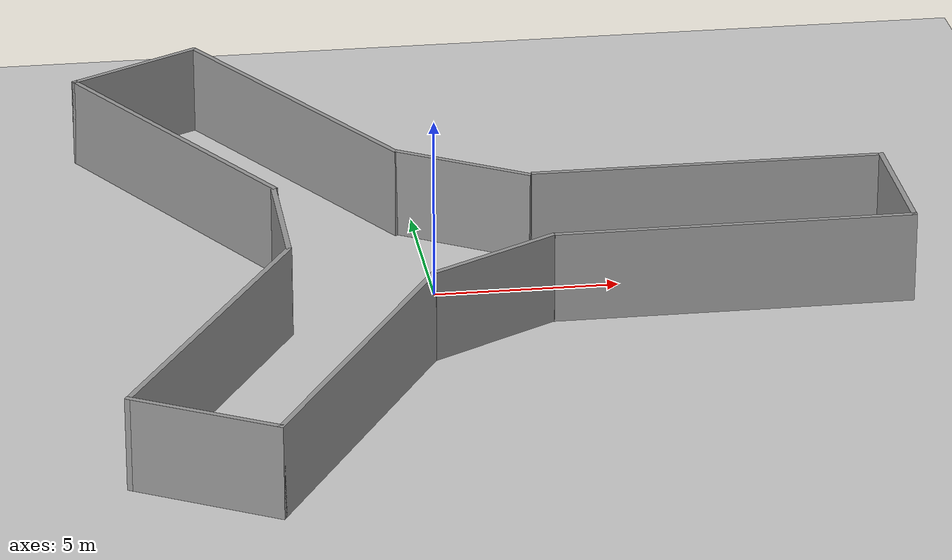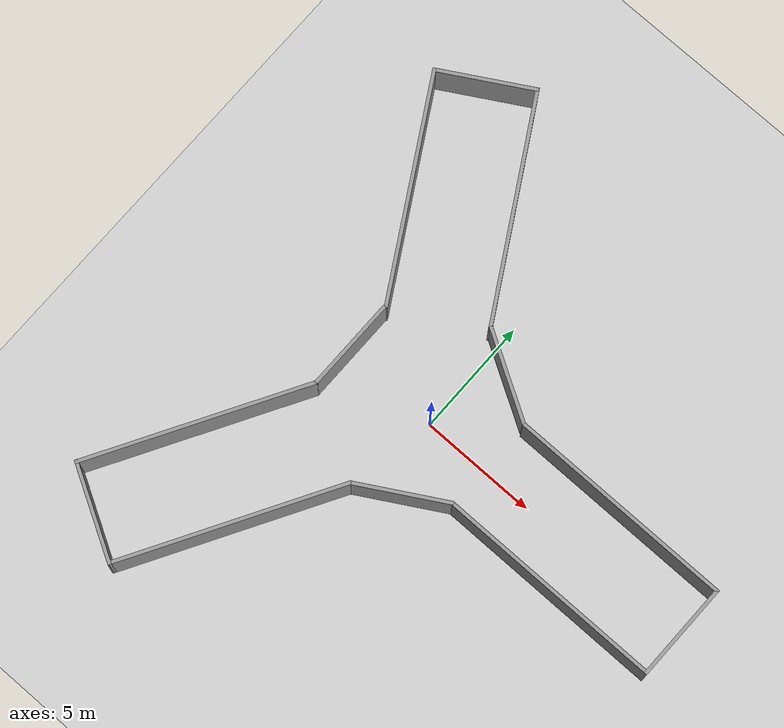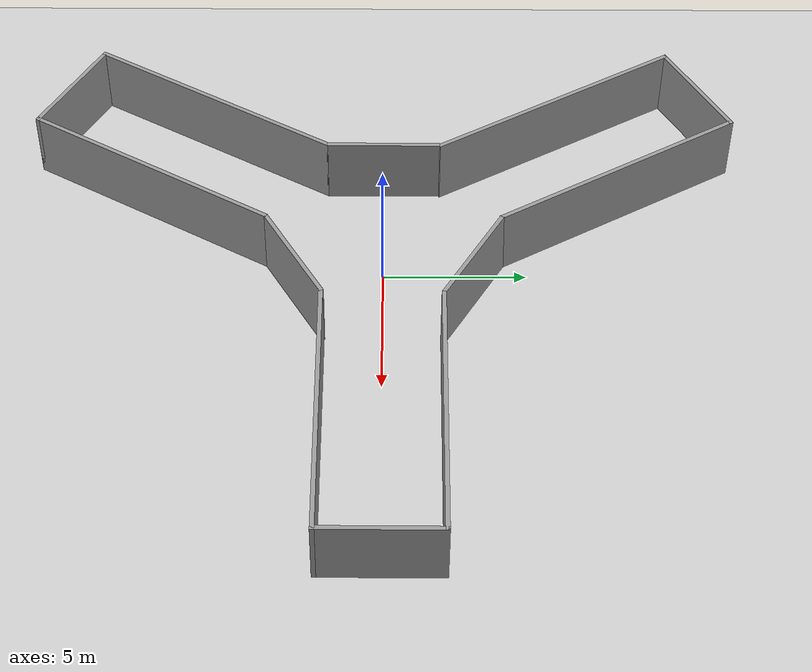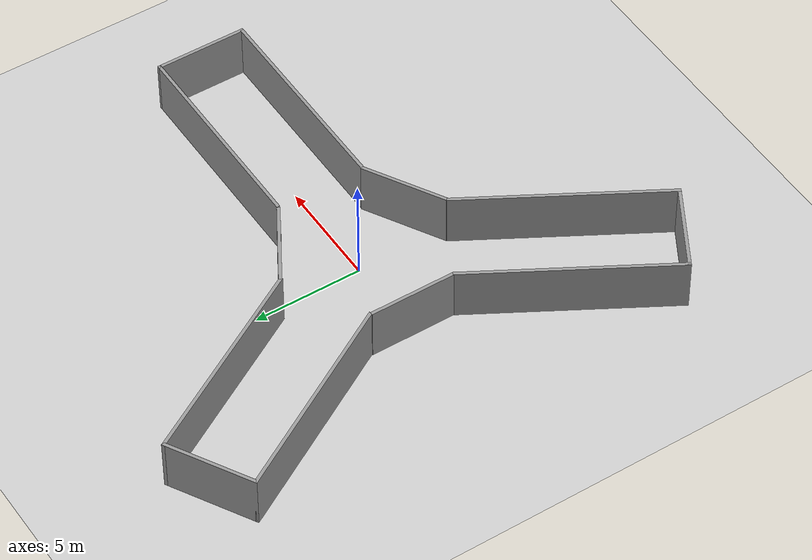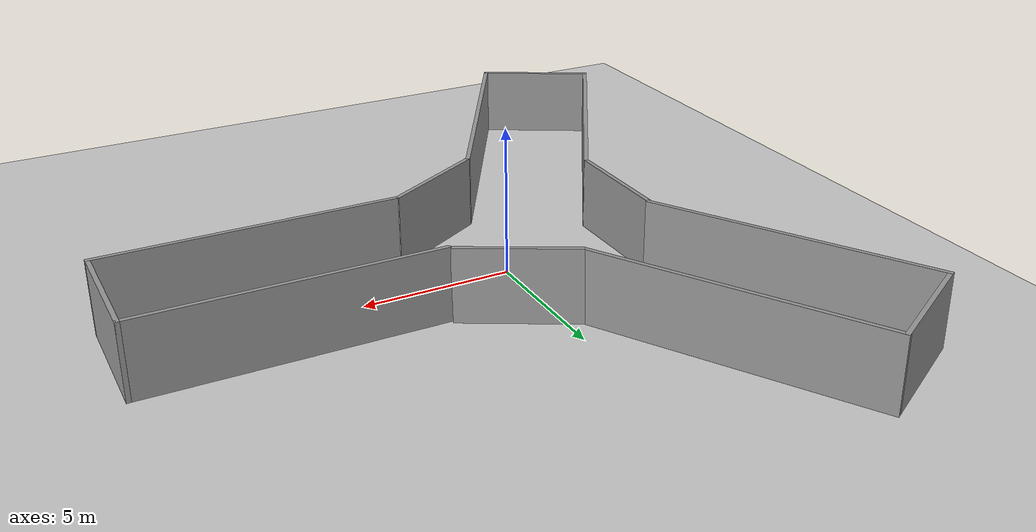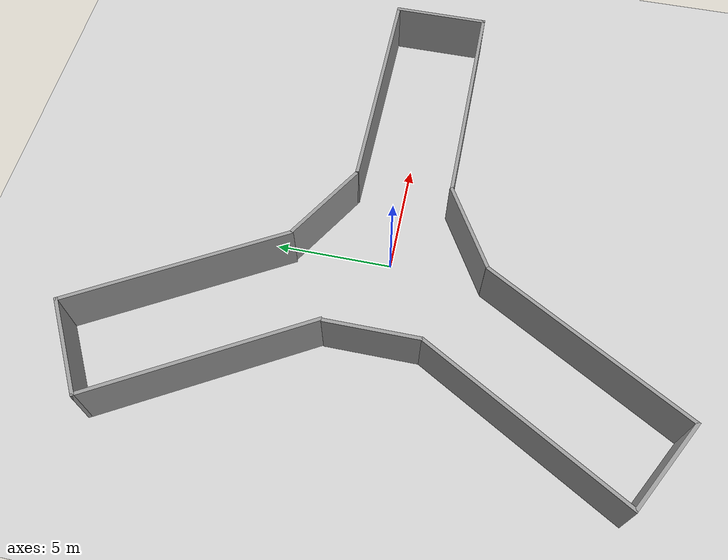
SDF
<sdf version="1.6">
 <world name="default">
  <light name="sun" type="directional">
   <pose>0 0 10 0 -0 0</pose>
   <diffuse>0.8 0.8 0.8 1</diffuse>
   <specular>0.2 0.2 0.2 1</specular>
   <attenuation>
    <range>1000</range>
    <constant>0.9</constant>
    <linear>0.01</linear>
    <quadratic>0.001</quadratic>
   </attenuation>
   <direction>-0.5 0.1 -0.9</direction>
  </light>
  <model name="ground_plane">
   <static>1</static>
   <link name="link">
    <collision name="collision">
     <geometry><plane><normal>0 0 1</normal><size>100 100</size></plane></geometry>
     <surface>
      <contact><collide_bitmask>65535</collide_bitmask></contact>
      <friction><ode><mu>100</mu><mu2>50</mu2></ode></friction>
     </surface>
    </collision>
    <visual name="visual">
     <cast_shadows>0</cast_shadows>
     <geometry><plane><normal>0 0 1</normal><size>100 100</size></plane></geometry>
     <material>
      <script><uri>file://media/materials/scripts/gazebo.material</uri><name>Gazebo/Grey</name></script>
     </material>
    </visual>
   </link>
  </model>
  <gravity>0 0 -9.8</gravity>
  <magnetic_field>6e-06 2.3e-05 -4.2e-05</magnetic_field>
  <atmosphere type="adiabatic"/>
  <physics name="default_physics" default="0" type="ode">
   <max_step_size>0.001</max_step_size>
   <real_time_factor>1</real_time_factor>
   <real_time_update_rate>1000</real_time_update_rate>
  </physics>
  <scene><ambient>0.4 0.4 0.4 1</ambient><background>0.7 0.7 0.7 1</background><shadows>1</shadows></scene>
  <audio><device>default</device></audio>
  <spherical_coordinates>
   <surface_model>EARTH_WGS84</surface_model>
   <latitude_deg>0</latitude_deg>
   <longitude_deg>0</longitude_deg>
   <elevation>0</elevation>
   <heading_deg>0</heading_deg>
  </spherical_coordinates>
  <model name="XorY">
   <pose>-4.74587 -7.18353 0 0 -0 1.047</pose>
   <link name="Wall_3">
    <collision name="Wall_3_Collision">
     <geometry><box><size>9.75 0.15 2.5</size></box></geometry>
     <pose>0 0 1.25 0 -0 0</pose>
    </collision>
    <visual name="Wall_3_Visual">
     <pose>0 0 1.25 0 -0 0</pose>
     <geometry><box><size>9.75 0.15 2.5</size></box></geometry>
     <material>
      <script><uri>file://media/materials/scripts/gazebo.material</uri><name>Gazebo/Grey</name></script>
      <ambient>1 1 1 1</ambient>
     </material>
     <meta><layer>0</layer></meta>
    </visual>
    <pose>0 2.05 0 0 -0 3.14159</pose>
   </link>
   <link name="Wall_4">
    <collision name="Wall_4_Collision">
     <geometry><box><size>4.25 0.15 2.5</size></box></geometry>
     <pose>0 0 1.25 0 -0 0</pose>
    </collision>
    <visual name="Wall_4_Visual">
     <pose>0 0 1.25 0 -0 0</pose>
     <geometry><box><size>4.25 0.15 2.5</size></box></geometry>
     <material>
      <script><uri>file://media/materials/scripts/gazebo.material</uri><name>Gazebo/Grey</name></script>
      <ambient>1 1 1 1</ambient>
     </material>
     <meta><layer>0</layer></meta>
    </visual>
    <pose>-4.8 0 0 0 -0 -1.5708</pose>
   </link>
   <link name="Wall_5">
    <collision name="Wall_5_Collision">
     <geometry><box><size>9.75 0.15 2.5</size></box></geometry>
     <pose>0 0 1.25 0 -0 0</pose>
    </collision>
    <visual name="Wall_5_Visual">
     <pose>0 0 1.25 0 -0 0</pose>
     <geometry><box><size>9.75 0.15 2.5</size></box></geometry>
     <material>
      <script><uri>file://media/materials/scripts/gazebo.material</uri><name>Gazebo/Grey</name></script>
      <ambient>1 1 1 1</ambient>
     </material>
     <meta><layer>0</layer></meta>
    </visual>
    <pose>0 -2.05 0 0 -0 0</pose>
   </link>
   <static>1</static>
  </model>
  <model name="Y">
   <pose>-4.09959 0.001194 0 0 -0 1.57</pose>
   <link name="Wall_0">
    <collision name="Wall_0_Collision">
     <geometry><box><size>4 0.15 2.5</size></box></geometry>
     <pose>0 0 1.25 0 -0 0</pose>
    </collision>
    <visual name="Wall_0_Visual">
     <pose>0 0 1.25 0 -0 0</pose>
     <geometry><box><size>4 0.15 2.5</size></box></geometry>
     <material>
      <script><uri>file://media/materials/scripts/gazebo.material</uri><name>Gazebo/Grey</name></script>
      <ambient>1 1 1 1</ambient>
     </material>
     <meta><layer>0</layer></meta>
    </visual>
   </link>
   <static>1</static>
  </model>
  <model name="XorY_0">
   <pose>-4.70506 7.22281 0 0 0 -1.046</pose>
   <link name="Wall_3">
    <collision name="Wall_3_Collision">
     <geometry><box><size>9.75 0.15 2.5</size></box></geometry>
     <pose>0 0 1.25 0 -0 0</pose>
    </collision>
    <visual name="Wall_3_Visual">
     <pose>0 0 1.25 0 -0 0</pose>
     <geometry><box><size>9.75 0.15 2.5</size></box></geometry>
     <material>
      <script><uri>file://media/materials/scripts/gazebo.material</uri><name>Gazebo/Grey</name></script>
      <ambient>1 1 1 1</ambient>
     </material>
     <meta><layer>0</layer></meta>
    </visual>
    <pose>0 2.05 0 0 -0 3.14159</pose>
   </link>
   <link name="Wall_4">
    <collision name="Wall_4_Collision">
     <geometry><box><size>4.25 0.15 2.5</size></box></geometry>
     <pose>0 0 1.25 0 -0 0</pose>
    </collision>
    <visual name="Wall_4_Visual">
     <pose>0 0 1.25 0 -0 0</pose>
     <geometry><box><size>4.25 0.15 2.5</size></box></geometry>
     <material>
      <script><uri>file://media/materials/scripts/gazebo.material</uri><name>Gazebo/Grey</name></script>
      <ambient>1 1 1 1</ambient>
     </material>
     <meta><layer>0</layer></meta>
    </visual>
    <pose>-4.8 0 0 0 -0 -1.5708</pose>
   </link>
   <link name="Wall_5">
    <collision name="Wall_5_Collision">
     <geometry><box><size>9.75 0.15 2.5</size></box></geometry>
     <pose>0 0 1.25 0 -0 0</pose>
    </collision>
    <visual name="Wall_5_Visual">
     <pose>0 0 1.25 0 -0 0</pose>
     <geometry><box><size>9.75 0.15 2.5</size></box></geometry>
     <material>
      <script><uri>file://media/materials/scripts/gazebo.material</uri><name>Gazebo/Grey</name></script>
      <ambient>1 1 1 1</ambient>
     </material>
     <meta><layer>0</layer></meta>
    </visual>
    <pose>0 -2.05 0 0 -0 0</pose>
   </link>
   <static>1</static>
  </model>
  <model name="Y_1">
   <pose>1.19496 3.1297 -0.013669 0.016673 0.013986 -0.533112</pose>
   <link name="Wall_0">
    <collision name="Wall_0_Collision">
     <geometry><box><size>4 0.15 2.5</size></box></geometry>
     <pose>0 0 1.25 0 -0 0</pose>
    </collision>
    <visual name="Wall_0_Visual">
     <pose>0 0 1.25 0 -0 0</pose>
     <geometry><box><size>4 0.15 2.5</size></box></geometry>
     <material>
      <script><uri>file://media/materials/scripts/gazebo.material</uri><name>Gazebo/Grey</name></script>
      <ambient>1 1 1 1</ambient>
     </material>
     <meta><layer>0</layer></meta>
    </visual>
   </link>
   <static>1</static>
  </model>
  <model name="XorY_1">
   <pose>7.8001 0 0 0 -0 3.14</pose>
   <link name="Wall_3">
    <collision name="Wall_3_Collision">
     <geometry><box><size>9.75 0.15 2.5</size></box></geometry>
     <pose>0 0 1.25 0 -0 0</pose>
    </collision>
    <visual name="Wall_3_Visual">
     <pose>0 0 1.25 0 -0 0</pose>
     <geometry><box><size>9.75 0.15 2.5</size></box></geometry>
     <material>
      <script><uri>file://media/materials/scripts/gazebo.material</uri><name>Gazebo/Grey</name></script>
      <ambient>1 1 1 1</ambient>
     </material>
     <meta><layer>0</layer></meta>
    </visual>
    <pose>0 2.05 0 0 -0 3.14159</pose>
   </link>
   <link name="Wall_4">
    <collision name="Wall_4_Collision">
     <geometry><box><size>4.25 0.15 2.5</size></box></geometry>
     <pose>0 0 1.25 0 -0 0</pose>
    </collision>
    <visual name="Wall_4_Visual">
     <pose>0 0 1.25 0 -0 0</pose>
     <geometry><box><size>4.25 0.15 2.5</size></box></geometry>
     <material>
      <script><uri>file://media/materials/scripts/gazebo.material</uri><name>Gazebo/Grey</name></script>
      <ambient>1 1 1 1</ambient>
     </material>
     <meta><layer>0</layer></meta>
    </visual>
    <pose>-4.8 0 0 0 -0 -1.5708</pose>
   </link>
   <link name="Wall_5">
    <collision name="Wall_5_Collision">
     <geometry><box><size>9.75 0.15 2.5</size></box></geometry>
     <pose>0 0 1.25 0 -0 0</pose>
    </collision>
    <visual name="Wall_5_Visual">
     <pose>0 0 1.25 0 -0 0</pose>
     <geometry><box><size>9.75 0.15 2.5</size></box></geometry>
     <material>
      <script><uri>file://media/materials/scripts/gazebo.material</uri><name>Gazebo/Grey</name></script>
      <ambient>1 1 1 1</ambient>
     </material>
     <meta><layer>0</layer></meta>
    </visual>
    <pose>0 -2.05 0 0 -0 0</pose>
   </link>
   <static>1</static>
  </model>
  <model name="Y_0">
   <pose>1.20208 -3.01001 0 0 -0 0.523</pose>
   <link name="Wall_0">
    <collision name="Wall_0_Collision">
     <geometry><box><size>4 0.15 2.5</size></box></geometry>
     <pose>0 0 1.25 0 -0 0</pose>
    </collision>
    <visual name="Wall_0_Visual">
     <pose>0 0 1.25 0 -0 0</pose>
     <geometry><box><size>4 0.15 2.5</size></box></geometry>
     <material>
      <script><uri>file://media/materials/scripts/gazebo.material</uri><name>Gazebo/Grey</name></script>
      <ambient>1 1 1 1</ambient>
     </material>
     <meta><layer>0</layer></meta>
    </visual>
   </link>
   <static>1</static>
  </model>
 </world>
</sdf>
